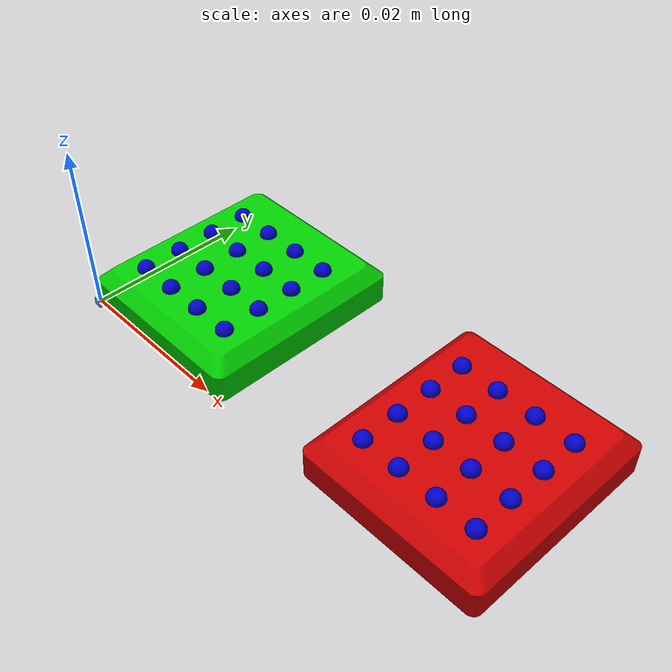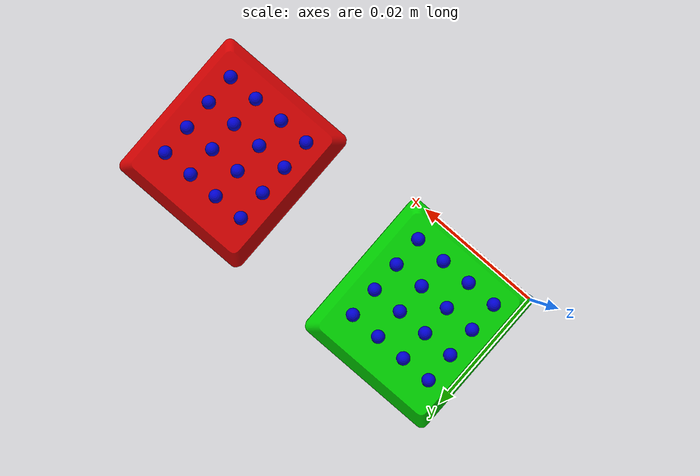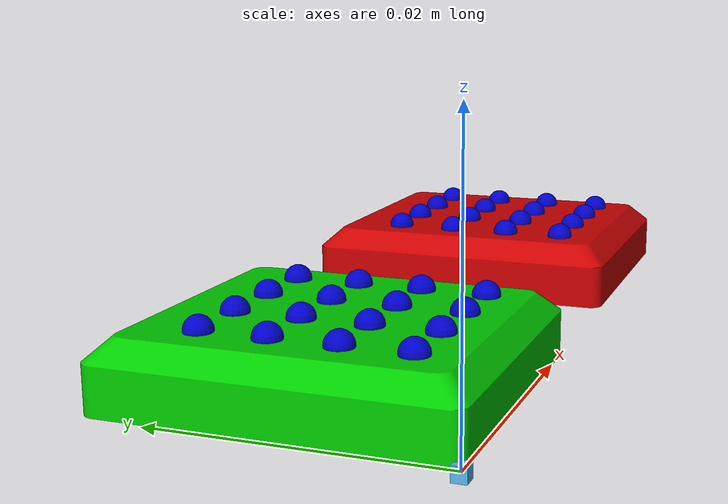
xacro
<?xml version="1.0"?>
<robot xmlns:xacro="http://www.ros.org/wiki/xacro" name="uSPa44_n_2modules">
  <xacro:arg name="use_ros2_control" default="false" />
  <xacro:arg name="mount_type" default="standalone" />
  <xacro:property name="use_ros2_control" value="$(arg use_ros2_control)" />
  <xacro:property name="mount_type" value="$(arg mount_type)" />

  <!-- standalone: both modules face the same direction (side by side)  -->
  <!-- gripper:    module 01/02 rotated to face each other               -->

  <xacro:include filename="$(find xela_models)/urdf/materials.xacro" />
  <xacro:include filename="$(find xela_models)/urdf/taxel_n.xacro" />
  <xacro:include filename="$(find xela_models)/urdf/uSPa44_n.xacro" />

  <link name="world" />

  <joint name="fixed" type="fixed">
    <parent link="world" />
    <child link="x_taxel_viz" />
  </joint>

  <link name="x_taxel_viz">
    <visual>
      <origin xyz="0.0 0.0 0.0" rpy="0 0 0"/>
      <geometry>
        <box size="0.001 0.001 0.001"/>
      </geometry>
    </visual>
  </link>

  <xacro:if value="${mount_type == 'gripper'}">
    <xacro:uSPa44 sequence="x_taxel_01" col="green" parent="x_taxel_viz" taxels="1" x="0" y="0.0226" rz="-90" />
  </xacro:if>
  <xacro:unless value="${mount_type == 'gripper'}">
    <xacro:uSPa44 sequence="x_taxel_01" col="green" parent="x_taxel_viz" taxels="1" x="0" y="0" />
  </xacro:unless>

  <xacro:if value="${mount_type == 'gripper'}">
    <xacro:uSPa44 sequence="x_taxel_02" col="red" parent="x_taxel_viz" taxels="1" x="0.0576" y="0" rz="90" />
  </xacro:if>
  <xacro:unless value="${mount_type == 'gripper'}">
    <xacro:uSPa44 sequence="x_taxel_02" col="red" parent="x_taxel_viz" taxels="1" x="0.035" y="0" />
  </xacro:unless>

  <xacro:if value="${use_ros2_control}">
    <ros2_control name="xela_taxel_fake_system" type="system">
      <hardware>
        <plugin>fake_components/GenericSystem</plugin>
      </hardware>
      <joint name="x_taxel_01_uSPa44_01_joint"><command_interface name="position"/><state_interface name="position"/></joint>
      <joint name="x_taxel_01_uSPa44_02_joint"><command_interface name="position"/><state_interface name="position"/></joint>
      <joint name="x_taxel_01_uSPa44_03_joint"><command_interface name="position"/><state_interface name="position"/></joint>
      <joint name="x_taxel_01_uSPa44_04_joint"><command_interface name="position"/><state_interface name="position"/></joint>
      <joint name="x_taxel_01_uSPa44_05_joint"><command_interface name="position"/><state_interface name="position"/></joint>
      <joint name="x_taxel_01_uSPa44_06_joint"><command_interface name="position"/><state_interface name="position"/></joint>
      <joint name="x_taxel_01_uSPa44_07_joint"><command_interface name="position"/><state_interface name="position"/></joint>
      <joint name="x_taxel_01_uSPa44_08_joint"><command_interface name="position"/><state_interface name="position"/></joint>
      <joint name="x_taxel_01_uSPa44_09_joint"><command_interface name="position"/><state_interface name="position"/></joint>
      <joint name="x_taxel_01_uSPa44_10_joint"><command_interface name="position"/><state_interface name="position"/></joint>
      <joint name="x_taxel_01_uSPa44_11_joint"><command_interface name="position"/><state_interface name="position"/></joint>
      <joint name="x_taxel_01_uSPa44_12_joint"><command_interface name="position"/><state_interface name="position"/></joint>
      <joint name="x_taxel_01_uSPa44_13_joint"><command_interface name="position"/><state_interface name="position"/></joint>
      <joint name="x_taxel_01_uSPa44_14_joint"><command_interface name="position"/><state_interface name="position"/></joint>
      <joint name="x_taxel_01_uSPa44_15_joint"><command_interface name="position"/><state_interface name="position"/></joint>
      <joint name="x_taxel_01_uSPa44_16_joint"><command_interface name="position"/><state_interface name="position"/></joint>
      <joint name="x_taxel_02_uSPa44_01_joint"><command_interface name="position"/><state_interface name="position"/></joint>
      <joint name="x_taxel_02_uSPa44_02_joint"><command_interface name="position"/><state_interface name="position"/></joint>
      <joint name="x_taxel_02_uSPa44_03_joint"><command_interface name="position"/><state_interface name="position"/></joint>
      <joint name="x_taxel_02_uSPa44_04_joint"><command_interface name="position"/><state_interface name="position"/></joint>
      <joint name="x_taxel_02_uSPa44_05_joint"><command_interface name="position"/><state_interface name="position"/></joint>
      <joint name="x_taxel_02_uSPa44_06_joint"><command_interface name="position"/><state_interface name="position"/></joint>
      <joint name="x_taxel_02_uSPa44_07_joint"><command_interface name="position"/><state_interface name="position"/></joint>
      <joint name="x_taxel_02_uSPa44_08_joint"><command_interface name="position"/><state_interface name="position"/></joint>
      <joint name="x_taxel_02_uSPa44_09_joint"><command_interface name="position"/><state_interface name="position"/></joint>
      <joint name="x_taxel_02_uSPa44_10_joint"><command_interface name="position"/><state_interface name="position"/></joint>
      <joint name="x_taxel_02_uSPa44_11_joint"><command_interface name="position"/><state_interface name="position"/></joint>
      <joint name="x_taxel_02_uSPa44_12_joint"><command_interface name="position"/><state_interface name="position"/></joint>
      <joint name="x_taxel_02_uSPa44_13_joint"><command_interface name="position"/><state_interface name="position"/></joint>
      <joint name="x_taxel_02_uSPa44_14_joint"><command_interface name="position"/><state_interface name="position"/></joint>
      <joint name="x_taxel_02_uSPa44_15_joint"><command_interface name="position"/><state_interface name="position"/></joint>
      <joint name="x_taxel_02_uSPa44_16_joint"><command_interface name="position"/><state_interface name="position"/></joint>
    </ros2_control>
  </xacro:if>

</robot>

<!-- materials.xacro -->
<robot xmlns:xacro="http://www.ros.org/wiki/xacro" name="materials">

  <!-- Rviz colors -->
  <material name="black">
    <color rgba="0.1 0.1 0.1 1.0"/>
  </material>

  <material name="blue">
    <color rgba="0.0 0.0 0.8 1.0"/>
  </material>

  <material name="green">
    <color rgba="0.0 0.8 0.0 1.0"/>
  </material>

  <material name="grey">
    <color rgba="0.2 0.2 0.2 1.0"/>
  </material>

  <material name="orange">
    <color rgba="${255/255} ${108/255} ${10/255} 1.0"/>
  </material>

  <material name="brown">
    <color rgba="${222/255} ${207/255} ${195/255} 1.0"/>
  </material>

  <material name="red">
    <color rgba="0.8 0.0 0.0 1.0"/>
  </material>

  <material name="white">
    <color rgba="1.0 1.0 1.0 1.0"/>
  </material>
</robot>

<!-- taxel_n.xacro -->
<robot xmlns:xacro="http://www.ros.org/wiki/xacro" name="xela_taxel">

  <xacro:macro name="taxel_n" params="sequence parent x:=0.0 y:=0.0 z:=0.0 rx:=0.0 ry:=0.0 rz:=0.0 col:='blue' zmod:=0.0 sensor_collision:=0 sensor_inertial:=0">

    <joint name="${sequence}_joint" type="prismatic">
      <origin xyz="${x} ${y} ${z}" rpy="${radians(rx)} ${radians(ry)} ${radians(rz)}"/>
      <parent link="${parent}"/>
      <child link="${sequence}_link"/>
      <axis xyz="0 0 1"/>
      <limit effort="100.0" lower="${-0.001-zmod}" upper="0.000" velocity="0.5"/>
    </joint>

    <link name="${sequence}_link">
      <visual>
        <geometry>
          <sphere radius="0.001"/>
        </geometry>
        <origin xyz="0.0 0.0 0.0" rpy="0 0 0"/>
        <material name="${col}"/>
      </visual>
      <xacro:if value="${sensor_collision}">
        <collision>
          <origin xyz="0.0 0.0 0.0" rpy="0 0 0"/>
          <geometry>
            <sphere radius="0.001"/>
          </geometry>
        </collision>
      </xacro:if>
      <xacro:if value="${sensor_inertial}">
        <inertial>
          <mass value="0.0001" />
          <origin xyz="0.0 0.0 0.0" rpy="0 0 0"/>
          <inertia ixx="0.0000006666667" ixy="0.0" ixz="0.0" iyy="0.0000006666667" iyz="0.0" izz="0.0000006666667"/>
        </inertial>
      </xacro:if>

    </link>

    <gazebo reference="${sequence}_link">
        <material>Gazebo/Blue</material>
    </gazebo>

  </xacro:macro>

  <xacro:macro name="taxelntest" params="sequence parent x:=0.0 y:=0.0 z:=0.0 rx:=0.0 ry:=0.0 rz:=0.0">
    <xacro:taxel_n sequence="${sequence}A"  x="${x}" y="${y}" z="${z}" rx="${rx}" ry="${ry}" rz="${rz}" parent="${parent}" />
    <xacro:taxel_n sequence="${sequence}B"  x="${x}" y="${y}" z="${z}" rx="${rx}" ry="${ry}" rz="${rz}" parent="${parent}" col="red" zmod="-0.001" />
  </xacro:macro>

</robot>

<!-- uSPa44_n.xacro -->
<robot name="uSPa44" xmlns:xacro="http://www.ros.org/wiki/xacro">

  <!-- uSPa44 new model -->
  <xacro:arg name="base_prefix" default="base_" />

  <xacro:macro name="uSPa44" params="sequence parent x:=0.0 y:=0.0 z:=0.0 rx:=0.0 ry:=0.0 rz:=0.0 col:='blue' body:=1 taxels:=1 skipinertia:=0 xoff=0.00425 yoff=0.00425 zoff=0.005 txstep=0.0047 tystep=0.0047 standalone:=0 sensor_collision:=1">

    <xacro:if value="${standalone == 1}">
      <xacro:include filename="$(find xela_models)/urdf/materials.xacro" />
      <xacro:include filename="$(find xela_models)/urdf/taxel_n.xacro" />
    </xacro:if>

    <xacro:property name="bseq" value="$(arg base_prefix)${sequence}"/>

    <joint name="${bseq}_uSPa44_fixed" type="fixed">
      <origin xyz="${x} ${y} ${z}" rpy="${radians(rx)} ${radians(ry)} ${radians(rz)}"/>
      <parent link="${parent}" />
      <child link="${bseq}_uSPa44_link" />
    </joint>
    <link name="${bseq}_uSPa44_link">
      <collision>
        <origin xyz="0 0 0" rpy="0 0 0" />
        <geometry>
          <mesh filename="package://xela_models/mesh/uSPa44_n.stl" scale="0.001 0.001 0.001"/>
        </geometry>
      </collision>
      <xacro:if value="${body == 1}">
        <visual>
          <origin xyz="0 0 0" rpy="0 0 0" />
          <geometry>
            <mesh filename="package://xela_models/mesh/uSPa44_n.stl" scale="0.001 0.001 0.001"/>
          </geometry>
          <material name="${col}"/>
        </visual>
        <xacro:unless value="${skipinertia == 1}">
          <inertial>
            <mass value="0.0036" />
            <origin xyz="0 0 0" rpy="0 0 0"/>
            <inertia ixx="5.76e-09" ixy="0.0" ixz="0.0" iyy="6.55e-09" iyz="1.44e-10" izz="1.20e-08" />
          </inertial>
        </xacro:unless>
      </xacro:if>
    </link>

    <gazebo reference="${bseq}_uSPa44_link">
      <material>Gazebo/Green</material>
    </gazebo>

    <xacro:if value="${taxels == 1}">
      <xacro:taxel_n sequence="${sequence}_uSPa44_01"  x="${0*txstep+xoff}" y="${3*tystep+yoff}" z="${zoff}" parent="${bseq}_uSPa44_link" sensor_collision="${sensor_collision}" />
      <xacro:taxel_n sequence="${sequence}_uSPa44_02"  x="${1*txstep+xoff}" y="${3*tystep+yoff}" z="${zoff}" parent="${bseq}_uSPa44_link" sensor_collision="${sensor_collision}" />
      <xacro:taxel_n sequence="${sequence}_uSPa44_03"  x="${2*txstep+xoff}" y="${3*tystep+yoff}" z="${zoff}" parent="${bseq}_uSPa44_link" sensor_collision="${sensor_collision}" />
      <xacro:taxel_n sequence="${sequence}_uSPa44_04"  x="${3*txstep+xoff}" y="${3*tystep+yoff}" z="${zoff}" parent="${bseq}_uSPa44_link" sensor_collision="${sensor_collision}" />
      <xacro:taxel_n sequence="${sequence}_uSPa44_05"  x="${0*txstep+xoff}" y="${2*tystep+yoff}" z="${zoff}" parent="${bseq}_uSPa44_link" sensor_collision="${sensor_collision}" />
      <xacro:taxel_n sequence="${sequence}_uSPa44_06"  x="${1*txstep+xoff}" y="${2*tystep+yoff}" z="${zoff}" parent="${bseq}_uSPa44_link" sensor_collision="${sensor_collision}" />
      <xacro:taxel_n sequence="${sequence}_uSPa44_07"  x="${2*txstep+xoff}" y="${2*tystep+yoff}" z="${zoff}" parent="${bseq}_uSPa44_link" sensor_collision="${sensor_collision}" />
      <xacro:taxel_n sequence="${sequence}_uSPa44_08"  x="${3*txstep+xoff}" y="${2*tystep+yoff}" z="${zoff}" parent="${bseq}_uSPa44_link" sensor_collision="${sensor_collision}" />
      <xacro:taxel_n sequence="${sequence}_uSPa44_09"  x="${0*txstep+xoff}" y="${1*tystep+yoff}" z="${zoff}" parent="${bseq}_uSPa44_link" sensor_collision="${sensor_collision}" />
      <xacro:taxel_n sequence="${sequence}_uSPa44_10" x="${1*txstep+xoff}" y="${1*tystep+yoff}" z="${zoff}" parent="${bseq}_uSPa44_link" sensor_collision="${sensor_collision}" />
      <xacro:taxel_n sequence="${sequence}_uSPa44_11" x="${2*txstep+xoff}" y="${1*tystep+yoff}" z="${zoff}" parent="${bseq}_uSPa44_link" sensor_collision="${sensor_collision}" />
      <xacro:taxel_n sequence="${sequence}_uSPa44_12" x="${3*txstep+xoff}" y="${1*tystep+yoff}" z="${zoff}" parent="${bseq}_uSPa44_link" sensor_collision="${sensor_collision}" />
      <xacro:taxel_n sequence="${sequence}_uSPa44_13" x="${0*txstep+xoff}" y="${0*tystep+yoff}" z="${zoff}" parent="${bseq}_uSPa44_link" sensor_collision="${sensor_collision}" />
      <xacro:taxel_n sequence="${sequence}_uSPa44_14" x="${1*txstep+xoff}" y="${0*tystep+yoff}" z="${zoff}" parent="${bseq}_uSPa44_link" sensor_collision="${sensor_collision}" />
      <xacro:taxel_n sequence="${sequence}_uSPa44_15" x="${2*txstep+xoff}" y="${0*tystep+yoff}" z="${zoff}" parent="${bseq}_uSPa44_link" sensor_collision="${sensor_collision}" />
      <xacro:taxel_n sequence="${sequence}_uSPa44_16" x="${3*txstep+xoff}" y="${0*tystep+yoff}" z="${zoff}" parent="${bseq}_uSPa44_link" sensor_collision="${sensor_collision}" />
    </xacro:if>
  </xacro:macro>

</robot>
